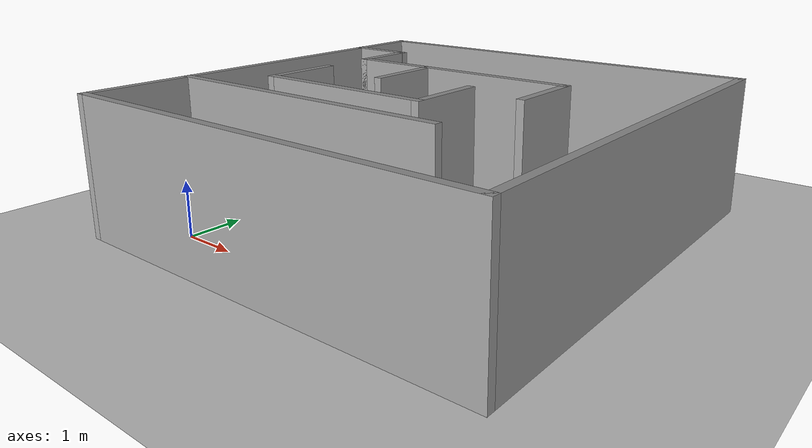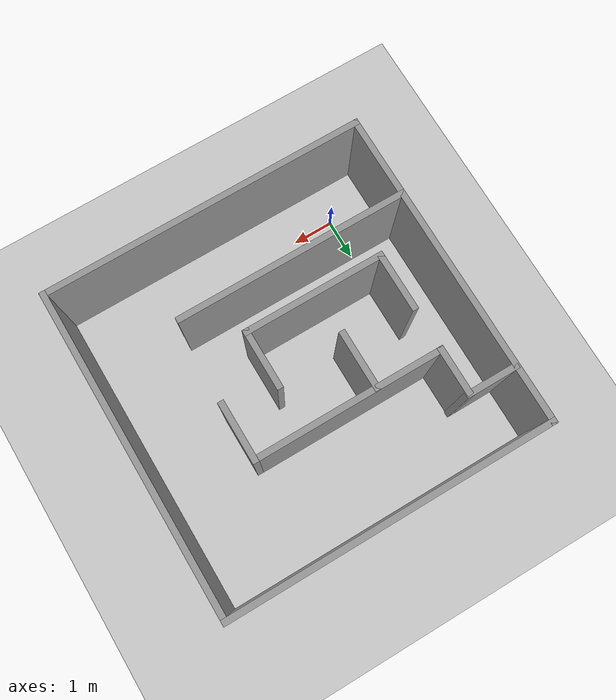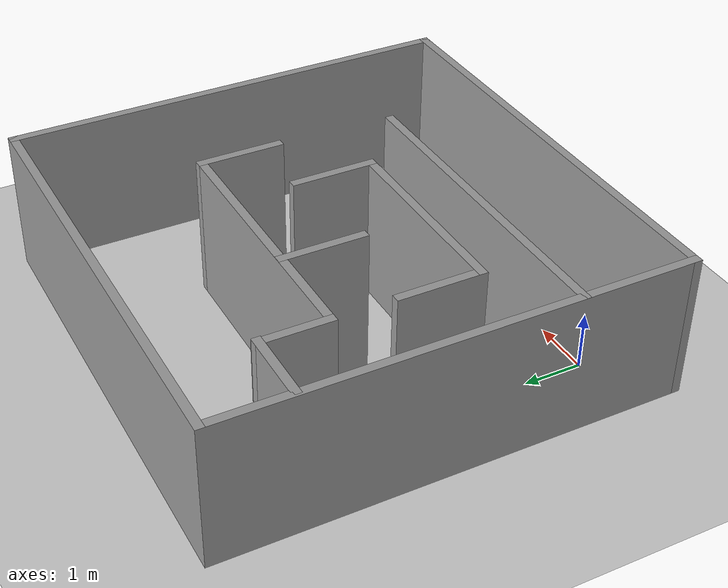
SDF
<sdf version="1.6">
 <world name="default">
  <include><uri>model://ground_plane</uri></include>
  <include><uri>model://sun</uri></include>
  <scene><shadows>false</shadows></scene>
  <physics type="ode">
   <real_time_update_rate>1000.0</real_time_update_rate>
   <max_step_size>0.001</max_step_size>
   <real_time_factor>1</real_time_factor>
   <ode>
    <solver>
     <type>quick</type>
     <iters>150</iters>
     <precon_iters>0</precon_iters>
     <sor>1.400000</sor>
     <use_dynamic_moi_rescaling>1</use_dynamic_moi_rescaling>
    </solver>
    <constraints>
     <cfm>0.00001</cfm>
     <erp>0.2</erp>
     <contact_max_correcting_vel>2000.000000</contact_max_correcting_vel>
     <contact_surface_layer>0.01000</contact_surface_layer>
    </constraints>
   </ode>
  </physics>
  <model name="practice3_world"><static>1</static><include><uri>model://practice3_world</uri></include></model>
  <plugin name="gazebo_ros_state" filename="libgazebo_ros_state.so">
   <ros><namespace>/</namespace></ros>
   <update_rate>30</update_rate>
  </plugin>
 </world>
</sdf>

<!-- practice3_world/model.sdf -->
<sdf version='1.7'>
  <model name='practice3_world'>
    <pose>2.75906 3.35851 0 0 -0 0</pose>
    <link name='Wall_0'>
      <collision name='Wall_0_Collision'>
        <geometry>
          <box>
            <size>8 0.15 2.5</size>
          </box>
        </geometry>
        <pose>0 0 1.25 0 -0 0</pose>
      </collision>
      <visual name='Wall_0_Visual'>
        <pose>0 0 1.25 0 -0 0</pose>
        <geometry>
          <box>
            <size>8 0.15 2.5</size>
          </box>
        </geometry>
        <material>
          <script>
            <uri>file://media/materials/scripts/gazebo.material</uri>
            <name>Gazebo/Grey</name>
          </script>
          <ambient>1 1 1 1</ambient>
        </material>
        <meta>
          <layer>0</layer>
        </meta>
      </visual>
      <pose>-3.90029 -0.397812 0 0 -0 1.5708</pose>
    </link>
    <link name='Wall_18'>
      <collision name='Wall_18_Collision'>
        <geometry>
          <box>
            <size>1.3075 0.15 2.5</size>
          </box>
        </geometry>
        <pose>0 0 1.25 0 -0 0</pose>
      </collision>
      <visual name='Wall_18_Visual'>
        <pose>0 0 1.25 0 -0 0</pose>
        <geometry>
          <box>
            <size>1.3075 0.15 2.5</size>
          </box>
        </geometry>
        <material>
          <script>
            <uri>file://media/materials/scripts/gazebo.material</uri>
            <name>Gazebo/Grey</name>
          </script>
          <ambient>1 1 1 1</ambient>
        </material>
        <meta>
          <layer>0</layer>
        </meta>
      </visual>
      <pose>-3.28387 2.15086 0 0 -0 3.14159</pose>
    </link>
    <link name='Wall_2'>
      <collision name='Wall_2_Collision'>
        <geometry>
          <box>
            <size>8 0.15 2.5</size>
          </box>
        </geometry>
        <pose>0 0 1.25 0 -0 0</pose>
      </collision>
      <visual name='Wall_2_Visual'>
        <pose>0 0 1.25 0 -0 0</pose>
        <geometry>
          <box>
            <size>8 0.15 2.5</size>
          </box>
        </geometry>
        <material>
          <script>
            <uri>file://media/materials/scripts/gazebo.material</uri>
            <name>Gazebo/Grey</name>
          </script>
          <ambient>1 1 1 1</ambient>
        </material>
        <meta>
          <layer>0</layer>
        </meta>
      </visual>
      <pose>0.024709 3.52719 0 0 -0 0</pose>
    </link>
    <link name='Wall_20'>
      <collision name='Wall_20_Collision'>
        <geometry>
          <box>
            <size>1.25 0.15 2.5</size>
          </box>
        </geometry>
        <pose>0 0 1.25 0 -0 0</pose>
      </collision>
      <visual name='Wall_20_Visual'>
        <pose>0 0 1.25 0 -0 0</pose>
        <geometry>
          <box>
            <size>1.25 0.15 2.5</size>
          </box>
        </geometry>
        <material>
          <script>
            <uri>file://media/materials/scripts/gazebo.material</uri>
            <name>Gazebo/Grey</name>
          </script>
          <ambient>1 1 1 1</ambient>
        </material>
        <meta>
          <layer>0</layer>
        </meta>
      </visual>
      <pose>-2.72524 1.60086 0 0 -0 -1.5708</pose>
    </link>
    <link name='Wall_24'>
      <collision name='Wall_24_Collision'>
        <geometry>
          <box>
            <size>4.6925 0.15 2.5</size>
          </box>
        </geometry>
        <pose>0 0 1.25 0 -0 0</pose>
      </collision>
      <visual name='Wall_24_Visual'>
        <pose>0 0 1.25 0 -0 0</pose>
        <geometry>
          <box>
            <size>4.6925 0.15 2.5</size>
          </box>
        </geometry>
        <material>
          <script>
            <uri>file://media/materials/scripts/gazebo.material</uri>
            <name>Gazebo/Grey</name>
          </script>
          <ambient>1 1 1 1</ambient>
        </material>
        <meta>
          <layer>0</layer>
        </meta>
      </visual>
      <pose>-0.433873 1.05086 0 0 -0 0</pose>
    </link>
    <link name='Wall_25'>
      <collision name='Wall_25_Collision'>
        <geometry>
          <box>
            <size>1.5 0.15 2.5</size>
          </box>
        </geometry>
        <pose>0 0 1.25 0 -0 0</pose>
      </collision>
      <visual name='Wall_25_Visual'>
        <pose>0 0 1.25 0 -0 0</pose>
        <geometry>
          <box>
            <size>1.5 0.15 2.5</size>
          </box>
        </geometry>
        <material>
          <script>
            <uri>file://media/materials/scripts/gazebo.material</uri>
            <name>Gazebo/Grey</name>
          </script>
          <ambient>1 1 1 1</ambient>
        </material>
        <meta>
          <layer>0</layer>
        </meta>
      </visual>
      <pose>1.83738 0.375864 0 0 -0 -1.5708</pose>
    </link>
    <link name='Wall_3'>
      <collision name='Wall_3_Collision'>
        <geometry>
          <box>
            <size>8 0.15 2.5</size>
          </box>
        </geometry>
        <pose>0 0 1.25 0 -0 0</pose>
      </collision>
      <visual name='Wall_3_Visual'>
        <pose>0 0 1.25 0 -0 0</pose>
        <geometry>
          <box>
            <size>8 0.15 2.5</size>
          </box>
        </geometry>
        <material>
          <script>
            <uri>file://media/materials/scripts/gazebo.material</uri>
            <name>Gazebo/Grey</name>
          </script>
          <ambient>1 1 1 1</ambient>
        </material>
        <meta>
          <layer>0</layer>
        </meta>
      </visual>
      <pose>3.94971 -0.397812 0 0 -0 -1.5708</pose>
    </link>
    <link name='Wall_31'>
      <collision name='Wall_31_Collision'>
        <geometry>
          <box>
            <size>1.5 0.15 2.5</size>
          </box>
        </geometry>
        <pose>0 0 1.25 0 -0 0</pose>
      </collision>
      <visual name='Wall_31_Visual'>
        <pose>0 0 1.25 0 -0 0</pose>
        <geometry>
          <box>
            <size>1.5 0.15 2.5</size>
          </box>
        </geometry>
        <material>
          <script>
            <uri>file://media/materials/scripts/gazebo.material</uri>
            <name>Gazebo/Grey</name>
          </script>
          <ambient>1 1 1 1</ambient>
        </material>
        <meta>
          <layer>0</layer>
        </meta>
      </visual>
      <pose>-2.72972 -0.710394 0 0 -0 -1.5708</pose>
    </link>
    <link name='Wall_4'>
      <collision name='Wall_4_Collision'>
        <geometry>
          <box>
            <size>8 0.15 2.5</size>
          </box>
        </geometry>
        <pose>0 0 1.25 0 -0 0</pose>
      </collision>
      <visual name='Wall_4_Visual'>
        <pose>0 0 1.25 0 -0 0</pose>
        <geometry>
          <box>
            <size>8 0.15 2.5</size>
          </box>
        </geometry>
        <material>
          <script>
            <uri>file://media/materials/scripts/gazebo.material</uri>
            <name>Gazebo/Grey</name>
          </script>
          <ambient>1 1 1 1</ambient>
        </material>
        <meta>
          <layer>0</layer>
        </meta>
      </visual>
      <pose>0.024709 -4.32281 0 0 -0 3.14159</pose>
    </link>
    <link name='Wall_41'>
      <collision name='Wall_41_Collision'>
        <geometry>
          <box>
            <size>3.5 0.15 2.5</size>
          </box>
        </geometry>
        <pose>0 0 1.25 0 -0 0</pose>
      </collision>
      <visual name='Wall_41_Visual'>
        <pose>0 0 1.25 0 -0 0</pose>
        <geometry>
          <box>
            <size>3.5 0.15 2.5</size>
          </box>
        </geometry>
        <material>
          <script>
            <uri>file://media/materials/scripts/gazebo.material</uri>
            <name>Gazebo/Grey</name>
          </script>
          <ambient>1 1 1 1</ambient>
        </material>
        <meta>
          <layer>0</layer>
        </meta>
      </visual>
      <pose>-1.05472 -1.38539 0 0 -0 0</pose>
    </link>
    <link name='Wall_44'>
      <collision name='Wall_44_Collision'>
        <geometry>
          <box>
            <size>1.5 0.15 2.5</size>
          </box>
        </geometry>
        <pose>0 0 1.25 0 -0 0</pose>
      </collision>
      <visual name='Wall_44_Visual'>
        <pose>0 0 1.25 0 -0 0</pose>
        <geometry>
          <box>
            <size>1.5 0.15 2.5</size>
          </box>
        </geometry>
        <material>
          <script>
            <uri>file://media/materials/scripts/gazebo.material</uri>
            <name>Gazebo/Grey</name>
          </script>
          <ambient>1 1 1 1</ambient>
        </material>
        <meta>
          <layer>0</layer>
        </meta>
      </visual>
      <pose>0.620284 -0.710394 0 0 -0 1.5708</pose>
    </link>
    <link name='Wall_46'>
      <collision name='Wall_46_Collision'>
        <geometry>
          <box>
            <size>1.5 0.15 2.5</size>
          </box>
        </geometry>
        <pose>0 0 1.25 0 -0 0</pose>
      </collision>
      <visual name='Wall_46_Visual'>
        <pose>0 0 1.25 0 -0 0</pose>
        <geometry>
          <box>
            <size>1.5 0.15 2.5</size>
          </box>
        </geometry>
        <material>
          <script>
            <uri>file://media/materials/scripts/gazebo.material</uri>
            <name>Gazebo/Grey</name>
          </script>
          <ambient>1 1 1 1</ambient>
        </material>
        <meta>
          <layer>0</layer>
        </meta>
      </visual>
      <pose>-1.12599 0.370986 0 0 -0 -1.5708</pose>
    </link>
    <link name='Wall_8'>
      <collision name='Wall_8_Collision'>
        <geometry>
          <box>
            <size>5.75 0.15 2.5</size>
          </box>
        </geometry>
        <pose>0 0 1.25 0 -0 0</pose>
      </collision>
      <visual name='Wall_8_Visual'>
        <pose>0 0 1.25 0 -0 0</pose>
        <geometry>
          <box>
            <size>5.75 0.15 2.5</size>
          </box>
        </geometry>
        <material>
          <script>
            <uri>file://media/materials/scripts/gazebo.material</uri>
            <name>Gazebo/Grey</name>
          </script>
          <ambient>1 1 1 1</ambient>
        </material>
        <meta>
          <layer>0</layer>
        </meta>
      </visual>
      <pose>-1.09724 -2.35839 0 0 -0 0</pose>
    </link>
    <static>1</static>
  </model>
</sdf>
